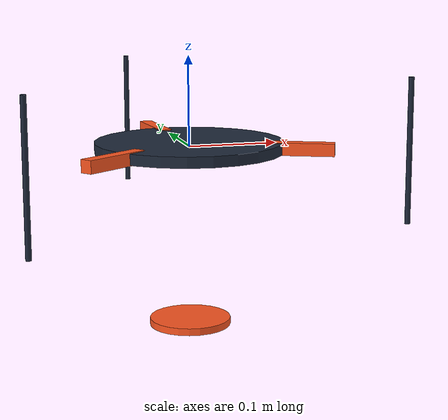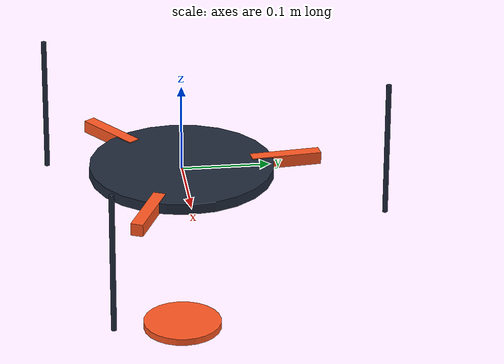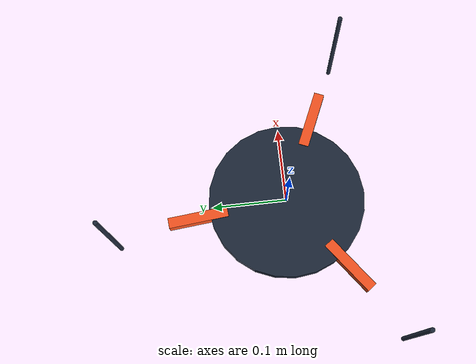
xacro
<?xml version="1.0"?>
<robot xmlns:xacro="http://www.ros.org/wiki/xacro" name="delta_robot">

  <!-- Robot Geometry Parameters (in meters) -->
  <xacro:property name="Rf" value="0.0805"/> <!-- Base Radius -->
  <xacro:property name="L"  value="0.0801"/> <!-- Bicep Length -->
  <xacro:property name="l"  value="0.1600"/> <!-- Forearm Length -->
  <xacro:property name="Re" value="0.0351"/> <!-- Nacelle Radius -->

  <!-- Materials -->
  <material name="dark_slate">
    <color rgba="0.12 0.16 0.23 1.0"/>
  </material>
  <material name="metallic_orange">
    <color rgba="1.0 0.34 0.13 1.0"/>
  </material>
  <material name="ghost_cyan">
    <color rgba="0.0 0.95 1.0 0.35"/>
  </material>
  <material name="brass_gold">
    <color rgba="0.83 0.68 0.21 1.0"/>
  </material>

  <!-- Base Link -->
  <link name="base_link">
    <visual>
      <origin xyz="0 0 0" rpy="0 0 0"/>
      <geometry>
        <cylinder radius="${Rf * 1.3}" length="0.012"/>
      </geometry>
      <material name="dark_slate"/>
    </visual>
    <collision>
      <origin xyz="0 0 0" rpy="0 0 0"/>
      <geometry>
        <cylinder radius="${Rf * 1.3}" length="0.012"/>
      </geometry>
    </collision>
  </link>

  <!-- Macro for Arm Linkage Assembly (i = 1, 2, 3) -->
  <xacro:macro name="delta_arm" params="prefix index phi_deg">
    <xacro:property name="phi" value="${phi_deg * 3.14159265 / 180.0}"/>

    <!-- Motor Mount Pivot -->
    <joint name="${prefix}motor_joint_${index}" type="revolute">
      <parent link="base_link"/>
      <child link="${prefix}bicep_link_${index}"/>
      <origin xyz="${Rf * cos(phi)} ${Rf * sin(phi)} 0" rpy="0 0 ${phi}"/>
      <axis xyz="0 1 0"/>
      <limit lower="-1.57" upper="1.57" effort="10.0" velocity="10.0"/>
    </joint>

    <!-- Bicep Link -->
    <link name="${prefix}bicep_link_${index}">
      <visual>
        <origin xyz="${L / 2.0} 0 0" rpy="0 0 0"/>
        <geometry>
          <box size="${L} 0.014 0.014"/>
        </geometry>
        <material name="metallic_orange"/>
      </visual>
    </link>

    <!-- Forearm Rod Pair -->
    <joint name="${prefix}elbow_joint_${index}" type="floating">
      <parent link="${prefix}bicep_link_${index}"/>
      <child link="${prefix}forearm_link_${index}"/>
      <origin xyz="${L} 0 0" rpy="0 0 0"/>
    </joint>

    <link name="${prefix}forearm_link_${index}">
      <visual>
        <origin xyz="${l / 2.0} 0 0" rpy="0 0 0"/>
        <geometry>
          <cylinder radius="0.003" length="${l}"/>
        </geometry>
        <material name="dark_slate"/>
      </visual>
    </link>
  </xacro:macro>

  <!-- Instantiate 3 Arms at 95.7 deg, 216.3 deg, 336.4 deg -->
  <xacro:delta_arm prefix="" index="1" phi_deg="95.7"/>
  <xacro:delta_arm prefix="" index="2" phi_deg="216.3"/>
  <xacro:delta_arm prefix="" index="3" phi_deg="336.4"/>

  <!-- Nacelle End-Effector Platform -->
  <link name="nacelle_link">
    <visual>
      <origin xyz="0 0 0" rpy="0 0 0"/>
      <geometry>
        <cylinder radius="${Re * 1.3}" length="0.008"/>
      </geometry>
      <material name="metallic_orange"/>
    </visual>
  </link>

  <joint name="nacelle_joint" type="floating">
    <parent link="base_link"/>
    <child link="nacelle_link"/>
    <origin xyz="0 0 -0.20" rpy="0 0 0"/>
  </joint>

</robot>
